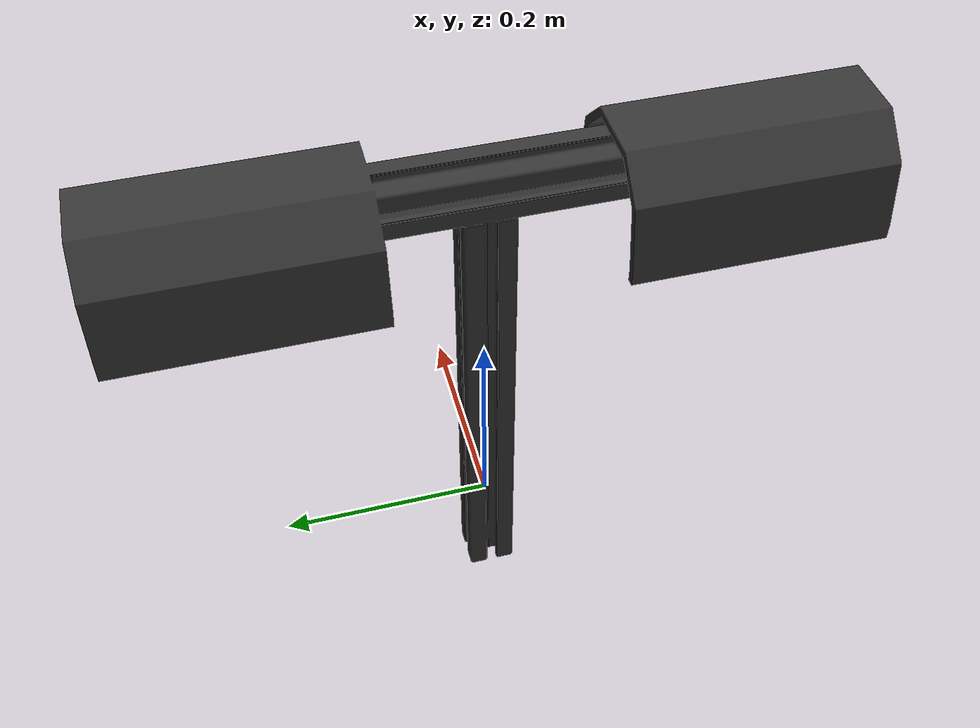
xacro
<?xml version="1.0"?>
<robot name="justina_torso" xmlns:xacro="http://www.ros.org/wiki/xacro">
<!--xacro:include filename="$(find justina_description)/urdf/justina/justina_torso.gazebo"/-->

  <xacro:macro name="box_inertia" params="m x y z">
    <inertia  ixx="${m*(y*y+z*z)/12}" ixy = "0" ixz = "0" iyy="${m*(x*x+z*z)/12}" iyz = "0" izz="${m*(x*x+z*z)/12}"/>
  </xacro:macro>

  <xacro:property name="torso_mass" value="0.6"/>
  <xacro:property name="spine_mass" value="0.1"/>
  <xacro:property name="PI_2" value="1.570796327"/>
  <xacro:property name="PI" value="3.14159265359"/>

  <link name="torso_link">
    <collision>
      <origin xyz= "0.0 0.0 -0.1" rpy="0 0 0"/>
      <geometry>
	    <mesh filename="package://justina_description/meshes/justina/torso/justina_chest.dae"/>
      </geometry>
    </collision>
    <visual>
      <origin xyz= "0.0 0.0 -0.1" rpy="0 0 0"/>
      <!--origin xyz= "0.04 -0.097 -0.55" rpy="0 0 0"/-->
      <geometry>
	    <mesh filename="package://justina_description/meshes/justina/torso/justina_chest.dae"/>
      </geometry>
      <material name="black_gray"><color rgba="0.2 0.2 0.2 1"/></material>
    </visual>
    <inertial>
      <mass value="${torso_mass}"/>
      <origin xyz= "0.04 -0.097 -0.55" rpy="0 0 0"/>
      <xacro:box_inertia m="${torso_mass}" x="0.07" y="0.09" z="0.55"/>
    </inertial>
  </link>

  <joint name="spine_connect" type="fixed">
    <origin xyz= "0.0 0 0.35" rpy="0 0 0"/>
    <parent link="torso_link"/>
    <child link="spine_link"/>
  </joint>

  <link name="spine_link">
      <origin xyz= "0.0 0.0 -0.5325" rpy="0 0 1.5707"/>

  </link>
</robot>
